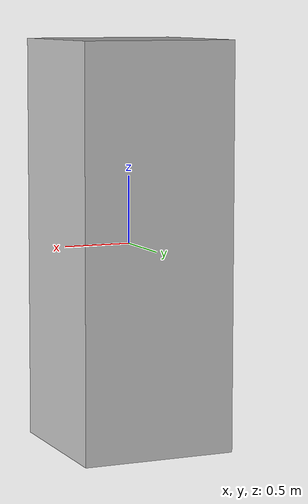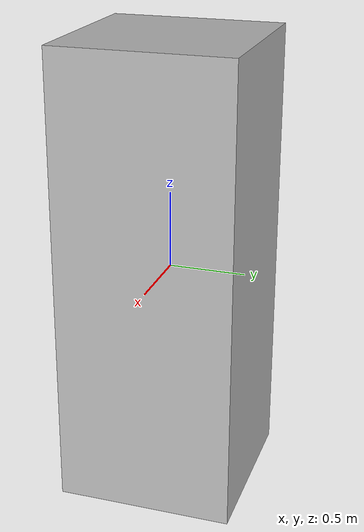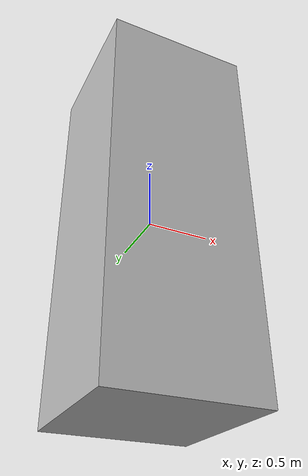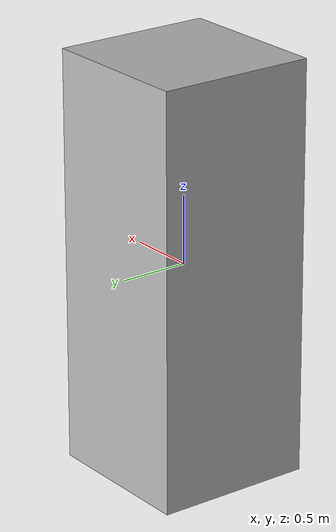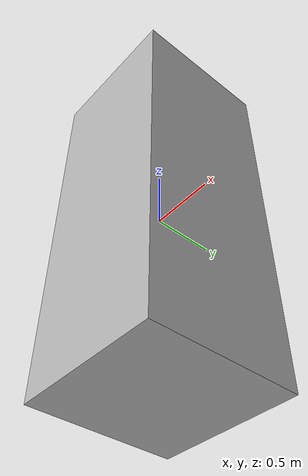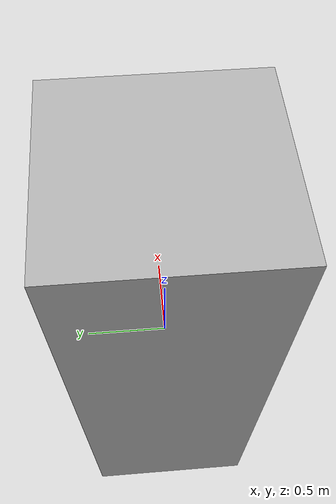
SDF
<?xml version='1.0'?>
<sdf version='13'>
  <model name="obstacles">
  <static>true</static>
            <link name='boundary_one'>
            <pose>0 0 0 0 0 0</pose>

            <collision name='collision'>
              <geometry>
                <box>
                  <size>1.15 1.15 3</size>
                </box>
              </geometry>
            </collision>

            <visual name='visual'>
              <geometry>
                <box>
                  <size>1.15 1.15 3</size>
                </box>
              </geometry>
                <material>
                  <script>
                    <uri>model://brick_box_3x1x3/materials/scripts</uri>
                    <uri>model://brick_box_3x1x3/materials/textures</uri>
                    <name>BrickBox/Diffuse</name>
                  </script>
                </material>
            </visual>
          </link>
  </model>
</sdf>
